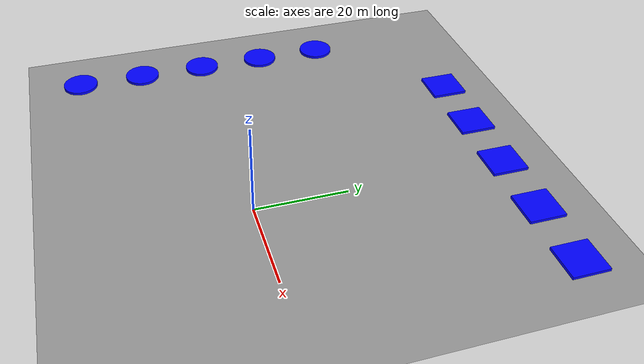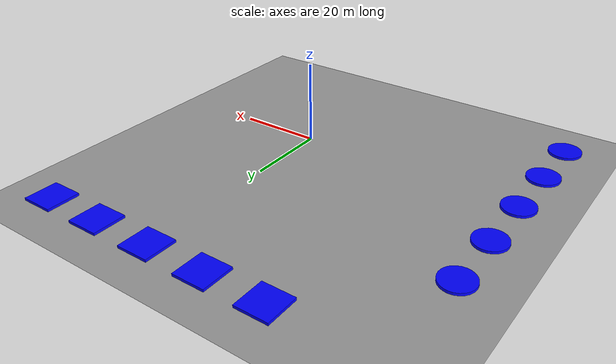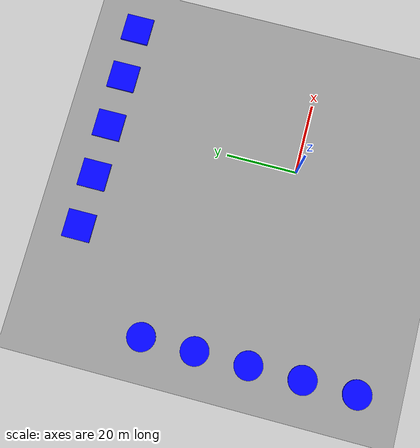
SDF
<sdf version="1.9">
 <world name="default">
  <physics type="ode">
   <max_step_size>0.01</max_step_size>
   <real_time_update_rate>60</real_time_update_rate>
  </physics>
  <model name="ground_plane">
   <static>true</static>
   <link name="link">
    <collision name="collision">
     <geometry><plane><normal>0 0 1</normal><size>100 100</size></plane></geometry>
     <surface><contact><collide_without_contact_bitmask>0x01</collide_without_contact_bitmask></contact></surface>
    </collision>
    <visual name="visual">
     <geometry><plane><normal>0 0 1</normal><size>100 100</size></plane></geometry>
     <material><ambient>0.6 0.6 0.6 1</ambient><diffuse>0.6 0.6 0.6 1</diffuse></material>
    </visual>
   </link>
  </model>
  <model name="moving_cylinder_1">
   <pose>-55.0 30.0 0 0 0 0</pose>
   <link name="moving_link">
    <gravity>false</gravity>
    <visual name="visual">
     <geometry><cylinder><radius>4.0</radius><length>1.0</length></cylinder></geometry>
     <material><ambient>0 0 1 1</ambient></material>
    </visual>
   </link>
   <motion>
    <link_name>moving_link</link_name>
    <direction>1 0 0</direction>
    <amplitude>110.0</amplitude>
    <speed>12.3558</speed>
    <turnaround_threshold>0.5</turnaround_threshold>
   </motion>
  </model>
  <model name="moving_cylinder_2">
   <pose>-55.0 15.0 0 0 0 0</pose>
   <link name="moving_link">
    <gravity>false</gravity>
    <visual name="visual">
     <geometry><cylinder><radius>4.0</radius><length>1.0</length></cylinder></geometry>
     <material><ambient>0 0 1 1</ambient></material>
    </visual>
   </link>
   <motion>
    <link_name>moving_link</link_name>
    <direction>1 0 0</direction>
    <amplitude>110.0</amplitude>
    <speed>12.9307</speed>
    <turnaround_threshold>0.5</turnaround_threshold>
   </motion>
  </model>
  <model name="moving_cylinder_3">
   <pose>-55.0 0.0 0 0 0 0</pose>
   <link name="moving_link">
    <gravity>false</gravity>
    <visual name="visual">
     <geometry><cylinder><radius>4.0</radius><length>1.0</length></cylinder></geometry>
     <material><ambient>0 0 1 1</ambient></material>
    </visual>
   </link>
   <motion>
    <link_name>moving_link</link_name>
    <direction>1 0 0</direction>
    <amplitude>110.0</amplitude>
    <speed>12.3275</speed>
    <turnaround_threshold>0.5</turnaround_threshold>
   </motion>
  </model>
  <model name="moving_cylinder_4">
   <pose>-55.0 -15 0 0 0 0</pose>
   <link name="moving_link">
    <gravity>false</gravity>
    <visual name="visual">
     <geometry><cylinder><radius>4.0</radius><length>1.0</length></cylinder></geometry>
     <material><ambient>0 0 1 1</ambient></material>
    </visual>
   </link>
   <motion>
    <link_name>moving_link</link_name>
    <direction>1 0 0</direction>
    <amplitude>110.0</amplitude>
    <speed>12.5926</speed>
    <turnaround_threshold>0.5</turnaround_threshold>
   </motion>
  </model>
  <model name="moving_cylinder_5">
   <pose>-55.0 -30 0 0 0 0</pose>
   <link name="moving_link">
    <gravity>false</gravity>
    <visual name="visual">
     <geometry><cylinder><radius>4.0</radius><length>1.0</length></cylinder></geometry>
     <material><ambient>0 0 1 1</ambient></material>
    </visual>
   </link>
   <motion>
    <link_name>moving_link</link_name>
    <direction>1 0 0</direction>
    <amplitude>110.0</amplitude>
    <speed>10.2434</speed>
    <turnaround_threshold>0.5</turnaround_threshold>
   </motion>
  </model>
  <model name="moving_box_6">
   <pose>-30.0 55.0 0 0 0 0</pose>
   <link name="moving_link">
    <gravity>false</gravity>
    <visual name="visual">
     <geometry><box><size>8.0 8.0 1.0</size></box></geometry>
     <material><ambient>0 0 1 1</ambient></material>
    </visual>
   </link>
   <motion>
    <link_name>moving_link</link_name>
    <direction>0 -1 0</direction>
    <amplitude>110.0</amplitude>
    <speed>13.4726</speed>
    <turnaround_threshold>0.5</turnaround_threshold>
   </motion>
  </model>
  <model name="moving_box_7">
   <pose>-15.0 55.0 0 0 0 0</pose>
   <link name="moving_link">
    <gravity>false</gravity>
    <visual name="visual">
     <geometry><box><size>8.0 8.0 1.0</size></box></geometry>
     <material><ambient>0 0 1 1</ambient></material>
    </visual>
   </link>
   <motion>
    <link_name>moving_link</link_name>
    <direction>0 -1 0</direction>
    <amplitude>110.0</amplitude>
    <speed>14.7503</speed>
    <turnaround_threshold>0.5</turnaround_threshold>
   </motion>
  </model>
  <model name="moving_box_8">
   <pose>0.0 55.0 0 0 0 0</pose>
   <link name="moving_link">
    <gravity>false</gravity>
    <visual name="visual">
     <geometry><box><size>8.0 8.0 1.0</size></box></geometry>
     <material><ambient>0 0 1 1</ambient></material>
    </visual>
   </link>
   <motion>
    <link_name>moving_link</link_name>
    <direction>0 -1 0</direction>
    <amplitude>110.0</amplitude>
    <speed>11.9084</speed>
    <turnaround_threshold>0.5</turnaround_threshold>
   </motion>
  </model>
  <model name="moving_box_9">
   <pose>15.0 55 0 0 0 0</pose>
   <link name="moving_link">
    <gravity>false</gravity>
    <visual name="visual">
     <geometry><box><size>8.0 8.0 1.0</size></box></geometry>
     <material><ambient>0 0 1 1</ambient></material>
    </visual>
   </link>
   <motion>
    <link_name>moving_link</link_name>
    <direction>0 -1 0</direction>
    <amplitude>110.0</amplitude>
    <speed>12.5603</speed>
    <turnaround_threshold>0.5</turnaround_threshold>
   </motion>
  </model>
  <model name="moving_box_10">
   <pose>30.0 55 0 0 0 0</pose>
   <link name="moving_link">
    <gravity>false</gravity>
    <visual name="visual">
     <geometry><box><size>8.0 8.0 1.0</size></box></geometry>
     <material><ambient>0 0 1 1</ambient></material>
    </visual>
   </link>
   <motion>
    <link_name>moving_link</link_name>
    <direction>0 -1 0</direction>
    <amplitude>110.0</amplitude>
    <speed>12.3271</speed>
    <turnaround_threshold>0.5</turnaround_threshold>
   </motion>
  </model>
 </world>
</sdf>
